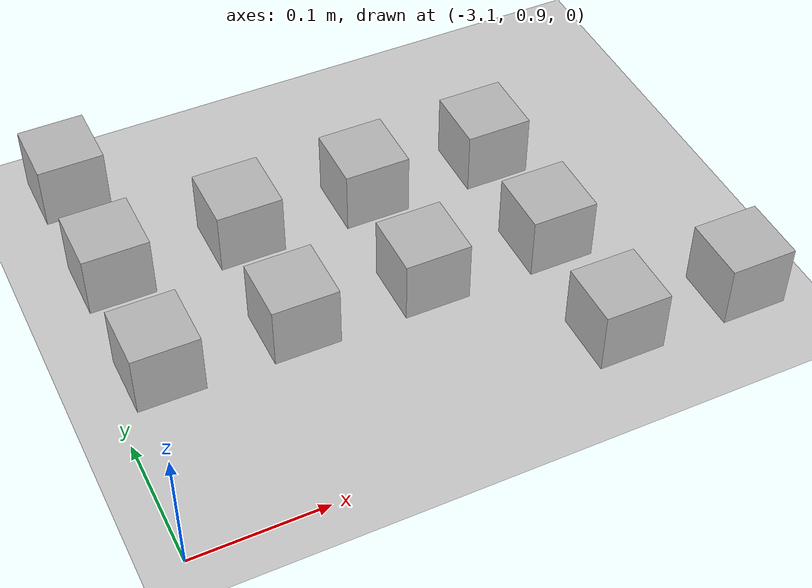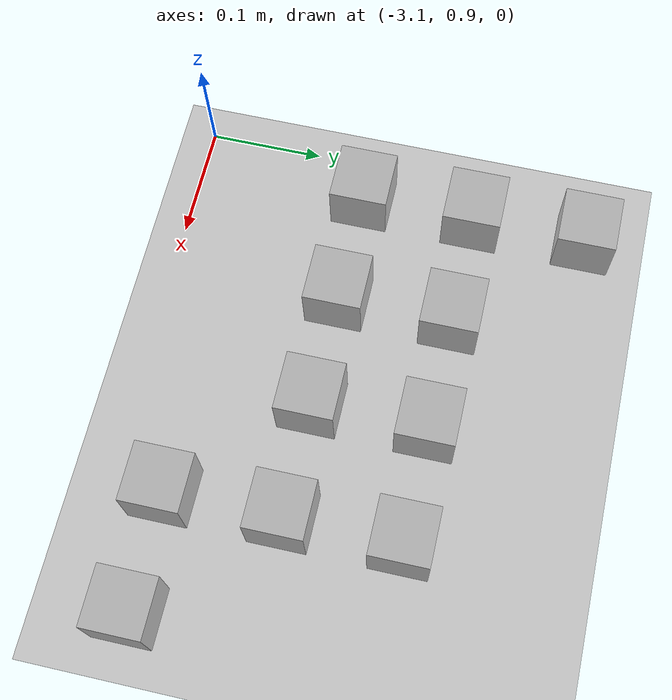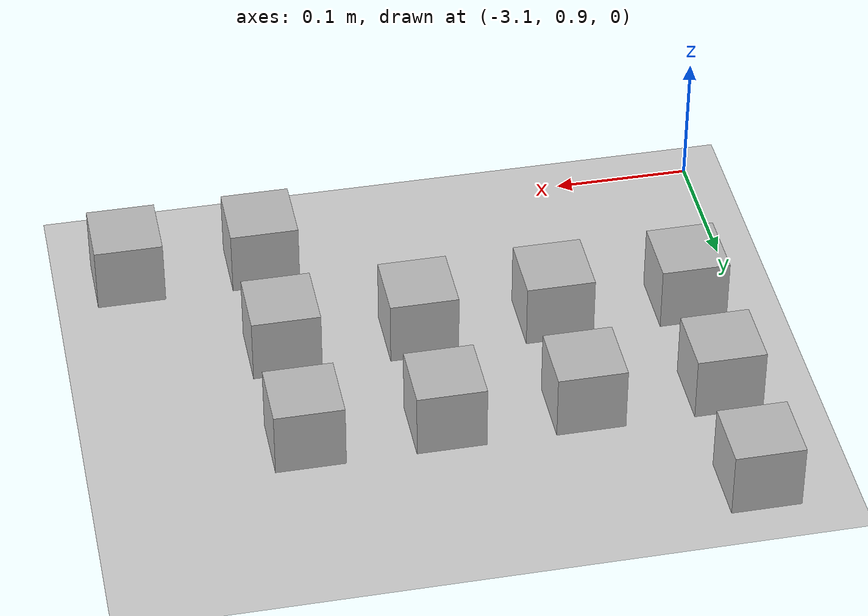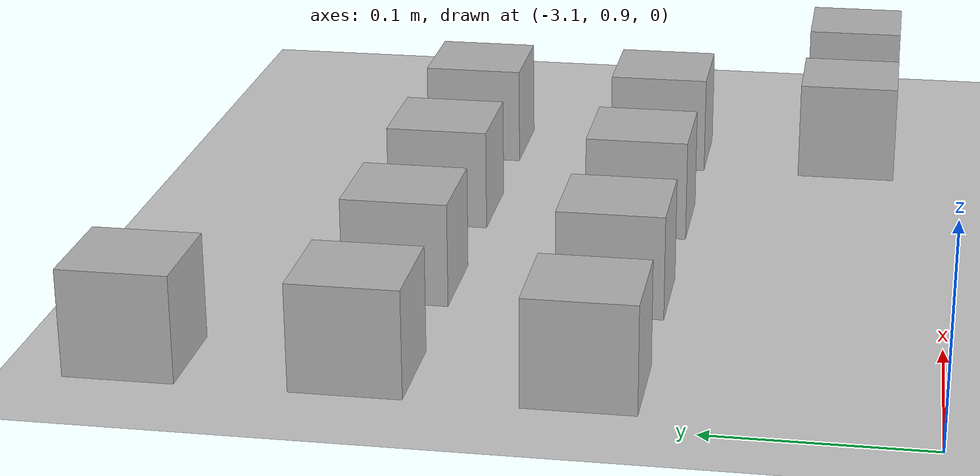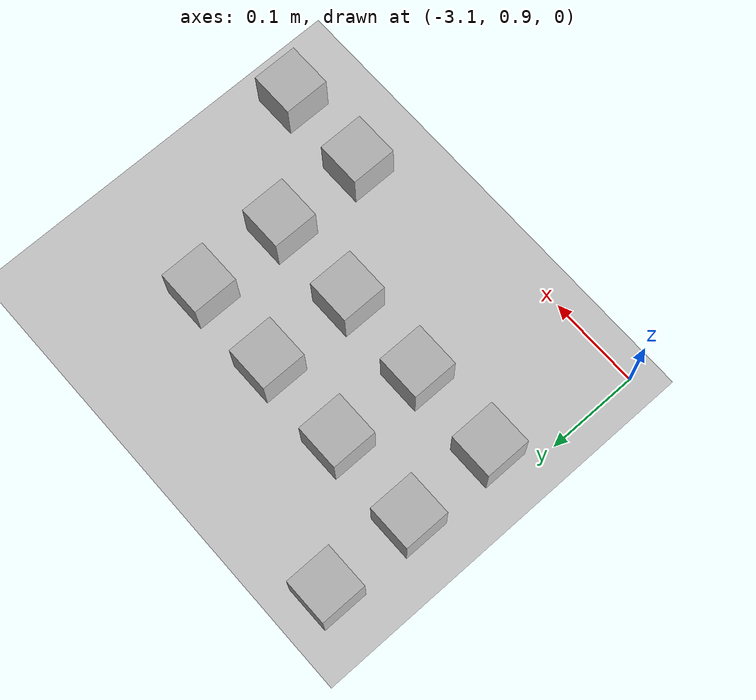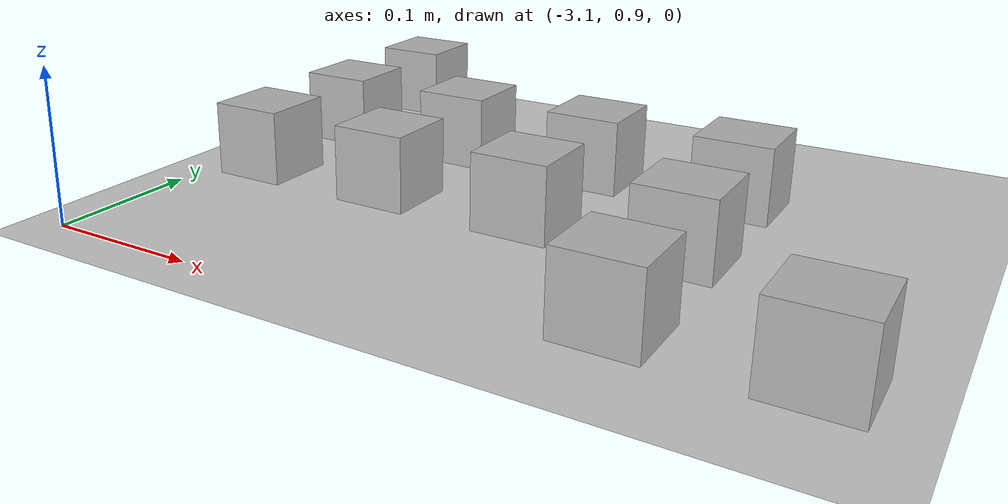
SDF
<sdf version="1.6">
 <world name="default">
  <model name="ground_plane">
   <static>1</static>
   <link name="link">
    <collision name="collision">
     <geometry><plane><normal>0 0 1</normal><size>100 100</size></plane></geometry>
     <surface><friction><ode><mu>100</mu><mu2>50</mu2></ode></friction></surface>
    </collision>
    <visual name="visual">
     <cast_shadows>0</cast_shadows>
     <geometry><plane><normal>0 0 1</normal><size>100 100</size></plane></geometry>
     <material>
      <script><uri>file://media/materials/scripts/gazebo.material</uri><name>Gazebo/Grey</name></script>
     </material>
    </visual>
   </link>
  </model>
  <model name="at3">
   <static>0</static>
   <link name="link">
    <inertial>
     <mass>0.01</mass>
     <inertia><ixx>4e-05</ixx><ixy>0</ixy><ixz>0</ixz><iyy>4e-05</iyy><iyz>0</iyz><izz>4e-05</izz></inertia>
    </inertial>
    <visual name="visual">
     <geometry><box><size>0.05 0.05 0.05</size></box></geometry>
     <material>
      <script>
       <uri>model://at0/materials/scripts</uri>
       <uri>model://at0/materials/textures</uri>
       <name>at0/Diffuse</name>
      </script>
     </material>
    </visual>
    <collision name="collision">
     <geometry><box><size>0.05 0.05 0.05</size></box></geometry>
     <surface><friction><ode><mu>0.8</mu><mu2>0.7</mu2></ode></friction></surface>
    </collision>
   </link>
   <pose>-2.76169 0.950554 0.025 0 -0 0</pose>
  </model>
  <model name="at4">
   <static>0</static>
   <link name="link">
    <inertial>
     <mass>0.01</mass>
     <inertia><ixx>4e-05</ixx><ixy>0</ixy><ixz>0</ixz><iyy>4e-05</iyy><iyz>0</iyz><izz>4e-05</izz></inertia>
    </inertial>
    <visual name="visual">
     <geometry><box><size>0.05 0.05 0.05</size></box></geometry>
     <material>
      <script>
       <uri>model://at0/materials/scripts</uri>
       <uri>model://at0/materials/textures</uri>
       <name>at0/Diffuse</name>
      </script>
     </material>
    </visual>
    <collision name="collision">
     <geometry><box><size>0.05 0.05 0.05</size></box></geometry>
     <surface><friction><ode><mu>0.8</mu><mu2>0.7</mu2></ode></friction></surface>
    </collision>
   </link>
   <pose>-2.66169 0.950554 0.025 0 -0 0</pose>
  </model>
  <model name="at8">
   <static>0</static>
   <link name="link">
    <inertial>
     <mass>0.01</mass>
     <inertia><ixx>4e-05</ixx><ixy>0</ixy><ixz>0</ixz><iyy>4e-05</iyy><iyz>0</iyz><izz>4e-05</izz></inertia>
    </inertial>
    <visual name="visual">
     <geometry><box><size>0.05 0.05 0.05</size></box></geometry>
     <material>
      <script>
       <uri>model://at0/materials/scripts</uri>
       <uri>model://at0/materials/textures</uri>
       <name>at0/Diffuse</name>
      </script>
     </material>
    </visual>
    <collision name="collision">
     <geometry><box><size>0.05 0.05 0.05</size></box></geometry>
     <surface><friction><ode><mu>0.8</mu><mu2>0.7</mu2></ode></friction></surface>
    </collision>
   </link>
   <pose>-3.06169 1.05055 0.025 0 -0 0</pose>
  </model>
  <model name="at9">
   <static>0</static>
   <link name="link">
    <inertial>
     <mass>0.01</mass>
     <inertia><ixx>4e-05</ixx><ixy>0</ixy><ixz>0</ixz><iyy>4e-05</iyy><iyz>0</iyz><izz>4e-05</izz></inertia>
    </inertial>
    <visual name="visual">
     <geometry><box><size>0.05 0.05 0.05</size></box></geometry>
     <material>
      <script>
       <uri>model://at0/materials/scripts</uri>
       <uri>model://at0/materials/textures</uri>
       <name>at0/Diffuse</name>
      </script>
     </material>
    </visual>
    <collision name="collision">
     <geometry><box><size>0.05 0.05 0.05</size></box></geometry>
     <surface><friction><ode><mu>0.8</mu><mu2>0.7</mu2></ode></friction></surface>
    </collision>
   </link>
   <pose>-2.96169 1.05055 0.025 0 -0 0</pose>
  </model>
  <model name="at10">
   <static>0</static>
   <link name="link">
    <inertial>
     <mass>0.01</mass>
     <inertia><ixx>4e-05</ixx><ixy>0</ixy><ixz>0</ixz><iyy>4e-05</iyy><iyz>0</iyz><izz>4e-05</izz></inertia>
    </inertial>
    <visual name="visual">
     <geometry><box><size>0.05 0.05 0.05</size></box></geometry>
     <material>
      <script>
       <uri>model://at0/materials/scripts</uri>
       <uri>model://at0/materials/textures</uri>
       <name>at0/Diffuse</name>
      </script>
     </material>
    </visual>
    <collision name="collision">
     <geometry><box><size>0.05 0.05 0.05</size></box></geometry>
     <surface><friction><ode><mu>0.8</mu><mu2>0.7</mu2></ode></friction></surface>
    </collision>
   </link>
   <pose>-2.86169 1.05055 0.025 0 -0 0</pose>
  </model>
  <model name="at11">
   <static>0</static>
   <link name="link">
    <inertial>
     <mass>0.01</mass>
     <inertia><ixx>4e-05</ixx><ixy>0</ixy><ixz>0</ixz><iyy>4e-05</iyy><iyz>0</iyz><izz>4e-05</izz></inertia>
    </inertial>
    <visual name="visual">
     <geometry><box><size>0.05 0.05 0.05</size></box></geometry>
     <material>
      <script>
       <uri>model://at0/materials/scripts</uri>
       <uri>model://at0/materials/textures</uri>
       <name>at0/Diffuse</name>
      </script>
     </material>
    </visual>
    <collision name="collision">
     <geometry><box><size>0.05 0.05 0.05</size></box></geometry>
     <surface><friction><ode><mu>0.8</mu><mu2>0.7</mu2></ode></friction></surface>
    </collision>
   </link>
   <pose>-2.76169 1.05055 0.025 0 -0 0</pose>
  </model>
  <model name="at16">
   <static>0</static>
   <link name="link">
    <inertial>
     <mass>0.01</mass>
     <inertia><ixx>4e-05</ixx><ixy>0</ixy><ixz>0</ixz><iyy>4e-05</iyy><iyz>0</iyz><izz>4e-05</izz></inertia>
    </inertial>
    <visual name="visual">
     <geometry><box><size>0.05 0.05 0.05</size></box></geometry>
     <material>
      <script>
       <uri>model://at0/materials/scripts</uri>
       <uri>model://at0/materials/textures</uri>
       <name>at0/Diffuse</name>
      </script>
     </material>
    </visual>
    <collision name="collision">
     <geometry><box><size>0.05 0.05 0.05</size></box></geometry>
     <surface><friction><ode><mu>0.8</mu><mu2>0.7</mu2></ode></friction></surface>
    </collision>
   </link>
   <pose>-3.06169 1.15055 0.025 0 -0 0</pose>
  </model>
  <model name="at17">
   <static>0</static>
   <link name="link">
    <inertial>
     <mass>0.01</mass>
     <inertia><ixx>4e-05</ixx><ixy>0</ixy><ixz>0</ixz><iyy>4e-05</iyy><iyz>0</iyz><izz>4e-05</izz></inertia>
    </inertial>
    <visual name="visual">
     <geometry><box><size>0.05 0.05 0.05</size></box></geometry>
     <material>
      <script>
       <uri>model://at0/materials/scripts</uri>
       <uri>model://at0/materials/textures</uri>
       <name>at0/Diffuse</name>
      </script>
     </material>
    </visual>
    <collision name="collision">
     <geometry><box><size>0.05 0.05 0.05</size></box></geometry>
     <surface><friction><ode><mu>0.8</mu><mu2>0.7</mu2></ode></friction></surface>
    </collision>
   </link>
   <pose>-2.96169 1.15055 0.025 0 -0 0</pose>
  </model>
  <model name="at18">
   <static>0</static>
   <link name="link">
    <inertial>
     <mass>0.01</mass>
     <inertia><ixx>4e-05</ixx><ixy>0</ixy><ixz>0</ixz><iyy>4e-05</iyy><iyz>0</iyz><izz>4e-05</izz></inertia>
    </inertial>
    <visual name="visual">
     <geometry><box><size>0.05 0.05 0.05</size></box></geometry>
     <material>
      <script>
       <uri>model://at0/materials/scripts</uri>
       <uri>model://at0/materials/textures</uri>
       <name>at0/Diffuse</name>
      </script>
     </material>
    </visual>
    <collision name="collision">
     <geometry><box><size>0.05 0.05 0.05</size></box></geometry>
     <surface><friction><ode><mu>0.8</mu><mu2>0.7</mu2></ode></friction></surface>
    </collision>
   </link>
   <pose>-2.86169 1.15055 0.025 0 -0 0</pose>
  </model>
  <model name="at19">
   <static>0</static>
   <link name="link">
    <inertial>
     <mass>0.01</mass>
     <inertia><ixx>4e-05</ixx><ixy>0</ixy><ixz>0</ixz><iyy>4e-05</iyy><iyz>0</iyz><izz>4e-05</izz></inertia>
    </inertial>
    <visual name="visual">
     <geometry><box><size>0.05 0.05 0.05</size></box></geometry>
     <material>
      <script>
       <uri>model://at0/materials/scripts</uri>
       <uri>model://at0/materials/textures</uri>
       <name>at0/Diffuse</name>
      </script>
     </material>
    </visual>
    <collision name="collision">
     <geometry><box><size>0.05 0.05 0.05</size></box></geometry>
     <surface><friction><ode><mu>0.8</mu><mu2>0.7</mu2></ode></friction></surface>
    </collision>
   </link>
   <pose>-2.76169 1.15055 0.025 0 -0 0</pose>
  </model>
  <model name="at24">
   <static>0</static>
   <link name="link">
    <inertial>
     <mass>0.01</mass>
     <inertia><ixx>4e-05</ixx><ixy>0</ixy><ixz>0</ixz><iyy>4e-05</iyy><iyz>0</iyz><izz>4e-05</izz></inertia>
    </inertial>
    <visual name="visual">
     <geometry><box><size>0.05 0.05 0.05</size></box></geometry>
     <material>
      <script>
       <uri>model://at0/materials/scripts</uri>
       <uri>model://at0/materials/textures</uri>
       <name>at0/Diffuse</name>
      </script>
     </material>
    </visual>
    <collision name="collision">
     <geometry><box><size>0.05 0.05 0.05</size></box></geometry>
     <surface><friction><ode><mu>0.8</mu><mu2>0.7</mu2></ode></friction></surface>
    </collision>
   </link>
   <pose>-3.06169 1.25055 0.025 0 -0 0</pose>
  </model>
 </world>
</sdf>
